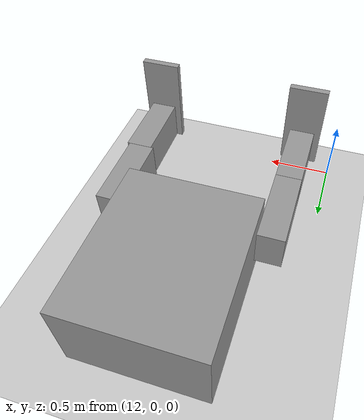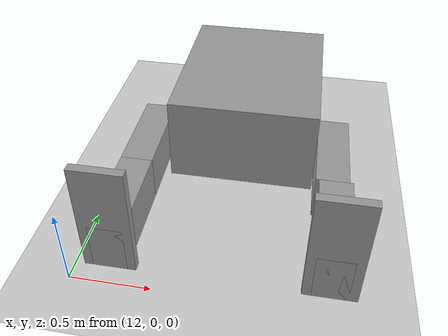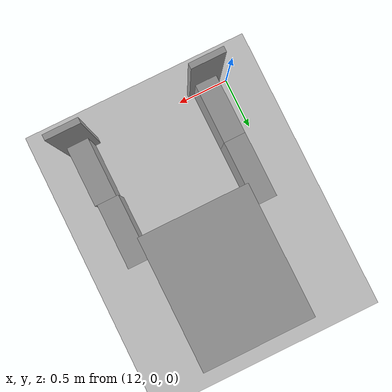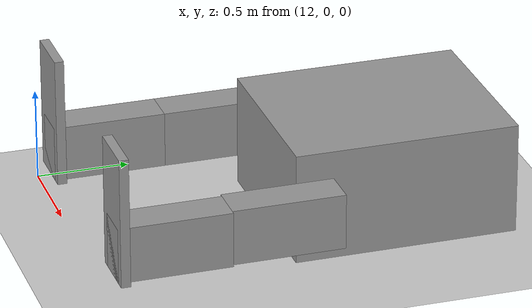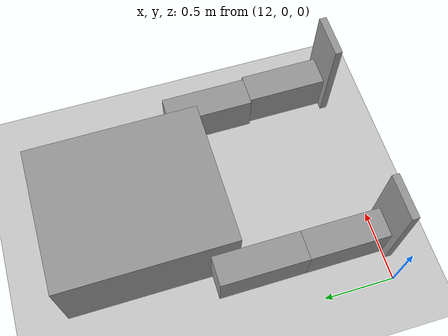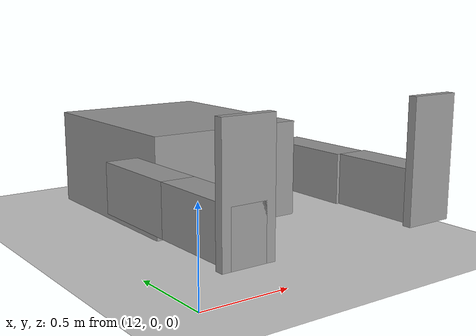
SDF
<sdf version="1.6">
 <world name="default">
  <model name="ground_plane">
   <static>1</static>
   <link name="link">
    <collision name="collision">
     <geometry><plane><normal>0 0 1</normal><size>100 100</size></plane></geometry>
     <surface><friction><ode><mu>100</mu><mu2>50</mu2></ode></friction></surface>
    </collision>
    <visual name="visual">
     <cast_shadows>0</cast_shadows>
     <geometry><plane><normal>0 0 1</normal><size>100 100</size></plane></geometry>
     <material>
      <script><uri>file://media/materials/scripts/gazebo.material</uri><name>Gazebo/Grey</name></script>
     </material>
    </visual>
   </link>
  </model>
  <model name="HumanoidRobot">
   <link name="link_0">
    <pose>-0.773711 1.48908 2.03333 0 -0 0</pose>
    <inertial>
     <mass>1</mass>
     <inertia>
      <ixx>0.166667</ixx>
      <ixy>0</ixy>
      <ixz>0</ixz>
      <iyy>0.166667</iyy>
      <iyz>0</iyz>
      <izz>0.166667</izz>
     </inertia>
    </inertial>
    <visual name="visual">
     <geometry><box><size>1 0.6 1.2</size></box></geometry>
     <material>
      <lighting>1</lighting>
      <script><uri>file://media/materials/scripts/gazebo.material</uri><name>Gazebo/Grey</name></script>
      <shader type="pixel"><normal_map>__default__</normal_map></shader>
      <ambient>0.3 0.3 0.3 1</ambient>
      <diffuse>0.7 0.7 0.7 1</diffuse>
      <specular>0.01 0.01 0.01 1</specular>
      <emissive>0 0 0 1</emissive>
     </material>
    </visual>
    <collision name="collision">
     <geometry><box><size>1 0.6 1.2</size></box></geometry>
     <surface>
      <friction>
       <ode><mu>1</mu><mu2>1</mu2><fdir1>0 0 0</fdir1><slip1>0</slip1><slip2>0</slip2></ode>
       <torsional>
        <coefficient>1</coefficient>
        <patch_radius>0</patch_radius>
        <surface_radius>0</surface_radius>
        <use_patch_radius>1</use_patch_radius>
        <ode><slip>0</slip></ode>
       </torsional>
      </friction>
      <bounce><restitution_coefficient>0</restitution_coefficient><threshold>1e+06</threshold></bounce>
      <contact>
       <collide_without_contact>0</collide_without_contact>
       <collide_without_contact_bitmask>1</collide_without_contact_bitmask>
       <collide_bitmask>1</collide_bitmask>
       <ode>
        <soft_cfm>0</soft_cfm>
        <soft_erp>0.2</soft_erp>
        <kp>1e+13</kp>
        <kd>1</kd>
        <max_vel>0.01</max_vel>
        <min_depth>0</min_depth>
       </ode>
       <bullet>
        <split_impulse>1</split_impulse>
        <split_impulse_penetration_threshold>-0.01</split_impulse_penetration_threshold>
        <soft_cfm>0</soft_cfm>
        <soft_erp>0.2</soft_erp>
        <kp>1e+13</kp>
        <kd>1</kd>
       </bullet>
      </contact>
     </surface>
    </collision>
   </link>
   <link name="link_1">
    <pose>-0.173711 1.48908 1.33333 0 -0 0</pose>
    <inertial>
     <mass>1</mass>
     <inertia>
      <ixx>0.166667</ixx>
      <ixy>0</ixy>
      <ixz>0</ixz>
      <iyy>0.166667</iyy>
      <iyz>0</iyz>
      <izz>0.166667</izz>
     </inertia>
    </inertial>
    <visual name="visual">
     <geometry><box><size>0.2 0.3 0.6</size></box></geometry>
     <material>
      <lighting>1</lighting>
      <script><uri>file://media/materials/scripts/gazebo.material</uri><name>Gazebo/Grey</name></script>
      <shader type="pixel"><normal_map>__default__</normal_map></shader>
      <ambient>0.3 0.3 0.3 1</ambient>
      <diffuse>0.7 0.7 0.7 1</diffuse>
      <specular>0.01 0.01 0.01 1</specular>
      <emissive>0 0 0 1</emissive>
     </material>
    </visual>
    <collision name="collision">
     <geometry><box><size>0.2 0.3 0.6</size></box></geometry>
     <surface>
      <friction>
       <ode><mu>1</mu><mu2>1</mu2><fdir1>0 0 0</fdir1><slip1>0</slip1><slip2>0</slip2></ode>
       <torsional>
        <coefficient>1</coefficient>
        <patch_radius>0</patch_radius>
        <surface_radius>0</surface_radius>
        <use_patch_radius>1</use_patch_radius>
        <ode><slip>0</slip></ode>
       </torsional>
      </friction>
      <bounce><restitution_coefficient>0</restitution_coefficient><threshold>1e+06</threshold></bounce>
      <contact>
       <collide_without_contact>0</collide_without_contact>
       <collide_without_contact_bitmask>1</collide_without_contact_bitmask>
       <collide_bitmask>1</collide_bitmask>
       <ode>
        <soft_cfm>0</soft_cfm>
        <soft_erp>0.2</soft_erp>
        <kp>1e+13</kp>
        <kd>1</kd>
        <max_vel>0.01</max_vel>
        <min_depth>0</min_depth>
       </ode>
       <bullet>
        <split_impulse>1</split_impulse>
        <split_impulse_penetration_threshold>-0.01</split_impulse_penetration_threshold>
        <soft_cfm>0</soft_cfm>
        <soft_erp>0.2</soft_erp>
        <kp>1e+13</kp>
        <kd>1</kd>
       </bullet>
      </contact>
     </surface>
    </collision>
   </link>
   <link name="link_1_clone">
    <pose>-1.37371 1.48908 1.33333 0 -0 0</pose>
    <inertial>
     <mass>1</mass>
     <inertia>
      <ixx>0.166667</ixx>
      <ixy>0</ixy>
      <ixz>0</ixz>
      <iyy>0.166667</iyy>
      <iyz>0</iyz>
      <izz>0.166667</izz>
     </inertia>
    </inertial>
    <visual name="visual">
     <geometry><box><size>0.2 0.3 0.6</size></box></geometry>
     <material>
      <lighting>1</lighting>
      <script><uri>file://media/materials/scripts/gazebo.material</uri><name>Gazebo/Grey</name></script>
      <shader type="pixel"><normal_map>__default__</normal_map></shader>
      <ambient>0.3 0.3 0.3 1</ambient>
      <diffuse>0.7 0.7 0.7 1</diffuse>
      <specular>0.01 0.01 0.01 1</specular>
      <emissive>0 0 0 1</emissive>
     </material>
    </visual>
    <collision name="collision">
     <geometry><box><size>0.2 0.3 0.6</size></box></geometry>
     <surface>
      <friction>
       <ode><mu>1</mu><mu2>1</mu2><fdir1>0 0 0</fdir1><slip1>0</slip1><slip2>0</slip2></ode>
       <torsional>
        <coefficient>1</coefficient>
        <patch_radius>0</patch_radius>
        <surface_radius>0</surface_radius>
        <use_patch_radius>1</use_patch_radius>
        <ode><slip>0</slip></ode>
       </torsional>
      </friction>
      <bounce><restitution_coefficient>0</restitution_coefficient><threshold>1e+06</threshold></bounce>
      <contact>
       <collide_without_contact>0</collide_without_contact>
       <collide_without_contact_bitmask>1</collide_without_contact_bitmask>
       <collide_bitmask>1</collide_bitmask>
       <ode>
        <soft_cfm>0</soft_cfm>
        <soft_erp>0.2</soft_erp>
        <kp>1e+13</kp>
        <kd>1</kd>
        <max_vel>0.01</max_vel>
        <min_depth>0</min_depth>
       </ode>
       <bullet>
        <split_impulse>1</split_impulse>
        <split_impulse_penetration_threshold>-0.01</split_impulse_penetration_threshold>
        <soft_cfm>0</soft_cfm>
        <soft_erp>0.2</soft_erp>
        <kp>1e+13</kp>
        <kd>1</kd>
       </bullet>
      </contact>
     </surface>
    </collision>
   </link>
   <link name="link_1_clone_0">
    <pose>-0.15371 1.48908 0.733332 0 -0 0</pose>
    <inertial>
     <mass>1</mass>
     <inertia>
      <ixx>0.166667</ixx>
      <ixy>0</ixy>
      <ixz>0</ixz>
      <iyy>0.166667</iyy>
      <iyz>0</iyz>
      <izz>0.166667</izz>
     </inertia>
    </inertial>
    <visual name="visual">
     <geometry><box><size>0.2 0.3 0.6</size></box></geometry>
     <material>
      <lighting>1</lighting>
      <script><uri>file://media/materials/scripts/gazebo.material</uri><name>Gazebo/Grey</name></script>
      <shader type="pixel"><normal_map>__default__</normal_map></shader>
      <ambient>0.3 0.3 0.3 1</ambient>
      <diffuse>0.7 0.7 0.7 1</diffuse>
      <specular>0.01 0.01 0.01 1</specular>
      <emissive>0 0 0 1</emissive>
     </material>
    </visual>
    <collision name="collision">
     <geometry><box><size>0.2 0.3 0.6</size></box></geometry>
     <surface>
      <friction>
       <ode><mu>1</mu><mu2>1</mu2><fdir1>0 0 0</fdir1><slip1>0</slip1><slip2>0</slip2></ode>
       <torsional>
        <coefficient>1</coefficient>
        <patch_radius>0</patch_radius>
        <surface_radius>0</surface_radius>
        <use_patch_radius>1</use_patch_radius>
        <ode><slip>0</slip></ode>
       </torsional>
      </friction>
      <bounce><restitution_coefficient>0</restitution_coefficient><threshold>1e+06</threshold></bounce>
      <contact>
       <collide_without_contact>0</collide_without_contact>
       <collide_without_contact_bitmask>1</collide_without_contact_bitmask>
       <collide_bitmask>1</collide_bitmask>
       <ode>
        <soft_cfm>0</soft_cfm>
        <soft_erp>0.2</soft_erp>
        <kp>1e+13</kp>
        <kd>1</kd>
        <max_vel>0.01</max_vel>
        <min_depth>0</min_depth>
       </ode>
       <bullet>
        <split_impulse>1</split_impulse>
        <split_impulse_penetration_threshold>-0.01</split_impulse_penetration_threshold>
        <soft_cfm>0</soft_cfm>
        <soft_erp>0.2</soft_erp>
        <kp>1e+13</kp>
        <kd>1</kd>
       </bullet>
      </contact>
     </surface>
    </collision>
   </link>
   <link name="link_1_clone_1">
    <pose>-1.37371 1.48908 0.733332 0 -0 0</pose>
    <inertial>
     <mass>1</mass>
     <inertia>
      <ixx>0.166667</ixx>
      <ixy>0</ixy>
      <ixz>0</ixz>
      <iyy>0.166667</iyy>
      <iyz>0</iyz>
      <izz>0.166667</izz>
     </inertia>
    </inertial>
    <visual name="visual">
     <geometry><box><size>0.2 0.3 0.6</size></box></geometry>
     <material>
      <lighting>1</lighting>
      <script><uri>file://media/materials/scripts/gazebo.material</uri><name>Gazebo/Grey</name></script>
      <shader type="pixel"><normal_map>__default__</normal_map></shader>
      <ambient>0.3 0.3 0.3 1</ambient>
      <diffuse>0.7 0.7 0.7 1</diffuse>
      <specular>0.01 0.01 0.01 1</specular>
      <emissive>0 0 0 1</emissive>
     </material>
    </visual>
    <collision name="collision">
     <geometry><box><size>0.2 0.3 0.6</size></box></geometry>
     <surface>
      <friction>
       <ode><mu>1</mu><mu2>1</mu2><fdir1>0 0 0</fdir1><slip1>0</slip1><slip2>0</slip2></ode>
       <torsional>
        <coefficient>1</coefficient>
        <patch_radius>0</patch_radius>
        <surface_radius>0</surface_radius>
        <use_patch_radius>1</use_patch_radius>
        <ode><slip>0</slip></ode>
       </torsional>
      </friction>
      <bounce><restitution_coefficient>0</restitution_coefficient><threshold>1e+06</threshold></bounce>
      <contact>
       <collide_without_contact>0</collide_without_contact>
       <collide_without_contact_bitmask>1</collide_without_contact_bitmask>
       <collide_bitmask>1</collide_bitmask>
       <ode>
        <soft_cfm>0</soft_cfm>
        <soft_erp>0.2</soft_erp>
        <kp>1e+13</kp>
        <kd>1</kd>
        <max_vel>0.01</max_vel>
        <min_depth>0</min_depth>
       </ode>
       <bullet>
        <split_impulse>1</split_impulse>
        <split_impulse_penetration_threshold>-0.01</split_impulse_penetration_threshold>
        <soft_cfm>0</soft_cfm>
        <soft_erp>0.2</soft_erp>
        <kp>1e+13</kp>
        <kd>1</kd>
       </bullet>
      </contact>
     </surface>
    </collision>
   </link>
   <link name="link_2">
    <pose>-0.15371 1.28908 0.458332 0 -0 0</pose>
    <inertial>
     <mass>1</mass>
     <inertia>
      <ixx>0.166667</ixx>
      <ixy>0</ixy>
      <ixz>0</ixz>
      <iyy>0.166667</iyy>
      <iyz>0</iyz>
      <izz>0.166667</izz>
     </inertia>
    </inertial>
    <visual name="visual">
     <geometry><box><size>0.3 0.7 0.05</size></box></geometry>
     <material>
      <lighting>1</lighting>
      <script><uri>file://media/materials/scripts/gazebo.material</uri><name>Gazebo/Grey</name></script>
      <shader type="pixel"><normal_map>__default__</normal_map></shader>
      <ambient>0.3 0.3 0.3 1</ambient>
      <diffuse>0.7 0.7 0.7 1</diffuse>
      <specular>0.01 0.01 0.01 1</specular>
      <emissive>0 0 0 1</emissive>
     </material>
    </visual>
    <collision name="collision">
     <geometry><box><size>0.3 0.7 0.05</size></box></geometry>
     <surface>
      <friction>
       <ode><mu>1</mu><mu2>1</mu2><fdir1>0 0 0</fdir1><slip1>0</slip1><slip2>0</slip2></ode>
       <torsional>
        <coefficient>1</coefficient>
        <patch_radius>0</patch_radius>
        <surface_radius>0</surface_radius>
        <use_patch_radius>1</use_patch_radius>
        <ode><slip>0</slip></ode>
       </torsional>
      </friction>
      <bounce><restitution_coefficient>0</restitution_coefficient><threshold>1e+06</threshold></bounce>
      <contact>
       <collide_without_contact>0</collide_without_contact>
       <collide_without_contact_bitmask>1</collide_without_contact_bitmask>
       <collide_bitmask>1</collide_bitmask>
       <ode>
        <soft_cfm>0</soft_cfm>
        <soft_erp>0.2</soft_erp>
        <kp>1e+13</kp>
        <kd>1</kd>
        <max_vel>0.01</max_vel>
        <min_depth>0</min_depth>
       </ode>
       <bullet>
        <split_impulse>1</split_impulse>
        <split_impulse_penetration_threshold>-0.01</split_impulse_penetration_threshold>
        <soft_cfm>0</soft_cfm>
        <soft_erp>0.2</soft_erp>
        <kp>1e+13</kp>
        <kd>1</kd>
       </bullet>
      </contact>
     </surface>
    </collision>
   </link>
   <link name="link_2_clone">
    <pose>-1.37371 1.28908 0.458332 0 -0 0</pose>
    <inertial>
     <mass>1</mass>
     <inertia>
      <ixx>0.166667</ixx>
      <ixy>0</ixy>
      <ixz>0</ixz>
      <iyy>0.166667</iyy>
      <iyz>0</iyz>
      <izz>0.166667</izz>
     </inertia>
    </inertial>
    <visual name="visual">
     <geometry><box><size>0.3 0.7 0.05</size></box></geometry>
     <material>
      <lighting>1</lighting>
      <script><uri>file://media/materials/scripts/gazebo.material</uri><name>Gazebo/Grey</name></script>
      <shader type="pixel"><normal_map>__default__</normal_map></shader>
      <ambient>0.3 0.3 0.3 1</ambient>
      <diffuse>0.7 0.7 0.7 1</diffuse>
      <specular>0.01 0.01 0.01 1</specular>
      <emissive>0 0 0 1</emissive>
     </material>
    </visual>
    <collision name="collision">
     <geometry><box><size>0.3 0.7 0.05</size></box></geometry>
     <surface>
      <friction>
       <ode><mu>1</mu><mu2>1</mu2><fdir1>0 0 0</fdir1><slip1>0</slip1><slip2>0</slip2></ode>
       <torsional>
        <coefficient>1</coefficient>
        <patch_radius>0</patch_radius>
        <surface_radius>0</surface_radius>
        <use_patch_radius>1</use_patch_radius>
        <ode><slip>0</slip></ode>
       </torsional>
      </friction>
      <bounce><restitution_coefficient>0</restitution_coefficient><threshold>1e+06</threshold></bounce>
      <contact>
       <collide_without_contact>0</collide_without_contact>
       <collide_without_contact_bitmask>1</collide_without_contact_bitmask>
       <collide_bitmask>1</collide_bitmask>
       <ode>
        <soft_cfm>0</soft_cfm>
        <soft_erp>0.2</soft_erp>
        <kp>1e+13</kp>
        <kd>1</kd>
        <max_vel>0.01</max_vel>
        <min_depth>0</min_depth>
       </ode>
       <bullet>
        <split_impulse>1</split_impulse>
        <split_impulse_penetration_threshold>-0.01</split_impulse_penetration_threshold>
        <soft_cfm>0</soft_cfm>
        <soft_erp>0.2</soft_erp>
        <kp>1e+13</kp>
        <kd>1</kd>
       </bullet>
      </contact>
     </surface>
    </collision>
   </link>
   <joint name="link_0_JOINT_0" type="revolute">
    <parent>link_0</parent>
    <child>link_1</child>
    <pose>0 0 0.2 0 -0 0</pose>
    <axis>
     <xyz>1 0 0</xyz>
     <use_parent_model_frame>0</use_parent_model_frame>
     <limit>
      <lower>-1.79769e+308</lower>
      <upper>1.79769e+308</upper>
      <effort>-1</effort>
      <velocity>-1</velocity>
     </limit>
     <dynamics>
      <spring_reference>0</spring_reference>
      <spring_stiffness>0</spring_stiffness>
      <damping>0</damping>
      <friction>0</friction>
     </dynamics>
    </axis>
    <physics>
     <ode><limit><cfm>0</cfm><erp>0.2</erp></limit><suspension><cfm>0</cfm><erp>0.2</erp></suspension></ode>
    </physics>
   </joint>
   <joint name="link_0_JOINT_1" type="revolute">
    <parent>link_0</parent>
    <child>link_1_clone</child>
    <pose>0 0 0.2 0 -0 0</pose>
    <axis>
     <xyz>1 0 0</xyz>
     <use_parent_model_frame>0</use_parent_model_frame>
     <limit>
      <lower>-1.79769e+308</lower>
      <upper>1.79769e+308</upper>
      <effort>-1</effort>
      <velocity>-1</velocity>
     </limit>
     <dynamics>
      <spring_reference>0</spring_reference>
      <spring_stiffness>0</spring_stiffness>
      <damping>0</damping>
     </dynamics>
    </axis>
    <physics>
     <ode><limit><cfm>0</cfm><erp>0.2</erp></limit><suspension><cfm>0</cfm><erp>0.2</erp></suspension></ode>
    </physics>
   </joint>
   <joint name="link_1_JOINT_2" type="revolute">
    <parent>link_1</parent>
    <child>link_1_clone_0</child>
    <pose>0 0 0.3 0 -0 0</pose>
    <axis>
     <xyz>1 0 0</xyz>
     <use_parent_model_frame>0</use_parent_model_frame>
     <limit>
      <lower>-1.79769e+308</lower>
      <upper>1.79769e+308</upper>
      <effort>-1</effort>
      <velocity>-1</velocity>
     </limit>
     <dynamics>
      <spring_reference>0</spring_reference>
      <spring_stiffness>0</spring_stiffness>
      <damping>0</damping>
     </dynamics>
    </axis>
    <physics>
     <ode><limit><cfm>0</cfm><erp>0.2</erp></limit><suspension><cfm>0</cfm><erp>0.2</erp></suspension></ode>
    </physics>
   </joint>
   <joint name="link_1_clone_0_JOINT_5" type="revolute">
    <parent>link_1_clone_0</parent>
    <child>link_2</child>
    <pose>0 0.1 0 0 -0 0</pose>
    <axis>
     <xyz>1 0 0</xyz>
     <use_parent_model_frame>0</use_parent_model_frame>
     <limit>
      <lower>-1.79769e+308</lower>
      <upper>1.79769e+308</upper>
      <effort>-1</effort>
      <velocity>-1</velocity>
     </limit>
     <dynamics>
      <spring_reference>0</spring_reference>
      <spring_stiffness>0</spring_stiffness>
      <damping>0</damping>
      <friction>0</friction>
     </dynamics>
    </axis>
    <physics>
     <ode><limit><cfm>0</cfm><erp>0.2</erp></limit><suspension><cfm>0</cfm><erp>0.2</erp></suspension></ode>
    </physics>
   </joint>
   <joint name="link_1_clone_1_JOINT_6" type="revolute">
    <parent>link_1_clone_1</parent>
    <child>link_2_clone</child>
    <pose>0 0.1 0 0 -0 0</pose>
    <axis>
     <xyz>1 0 0</xyz>
     <use_parent_model_frame>0</use_parent_model_frame>
     <limit>
      <lower>-1.79769e+308</lower>
      <upper>1.79769e+308</upper>
      <effort>-1</effort>
      <velocity>-1</velocity>
     </limit>
     <dynamics>
      <spring_reference>0</spring_reference>
      <spring_stiffness>0</spring_stiffness>
      <damping>0</damping>
      <friction>0</friction>
     </dynamics>
    </axis>
    <physics>
     <ode><limit><cfm>0</cfm><erp>0.2</erp></limit><suspension><cfm>0</cfm><erp>0.2</erp></suspension></ode>
    </physics>
   </joint>
   <joint name="link_1_clone_JOINT_3" type="revolute">
    <parent>link_1_clone</parent>
    <child>link_1_clone_1</child>
    <pose>0 0 0.3 0 -0 0</pose>
    <axis>
     <xyz>1 0 0</xyz>
     <use_parent_model_frame>0</use_parent_model_frame>
     <limit>
      <lower>-1.79769e+308</lower>
      <upper>1.79769e+308</upper>
      <effort>-1</effort>
      <velocity>-1</velocity>
     </limit>
     <dynamics>
      <spring_reference>0</spring_reference>
      <spring_stiffness>0</spring_stiffness>
      <damping>0</damping>
     </dynamics>
    </axis>
    <physics>
     <ode><limit><cfm>0</cfm><erp>0.2</erp></limit><suspension><cfm>0</cfm><erp>0.2</erp></suspension></ode>
    </physics>
   </joint>
   <static>0</static>
   <pose>13.6493 -0.426341 1.78908 -1.5708 -0 0.003047</pose>
  </model>
 </world>
</sdf>
